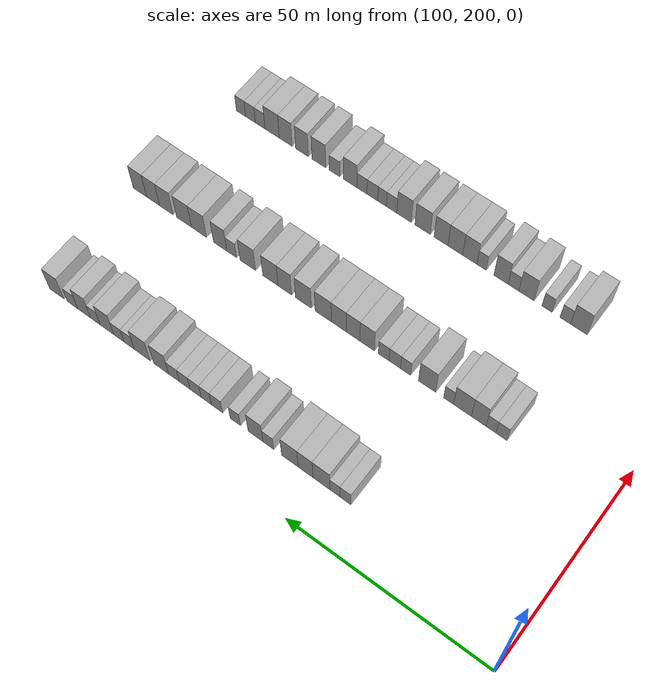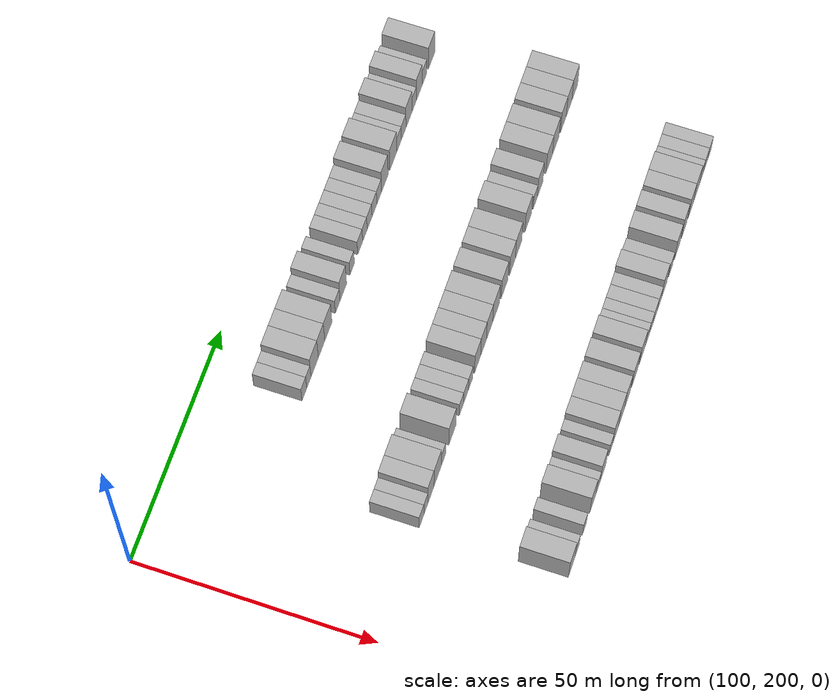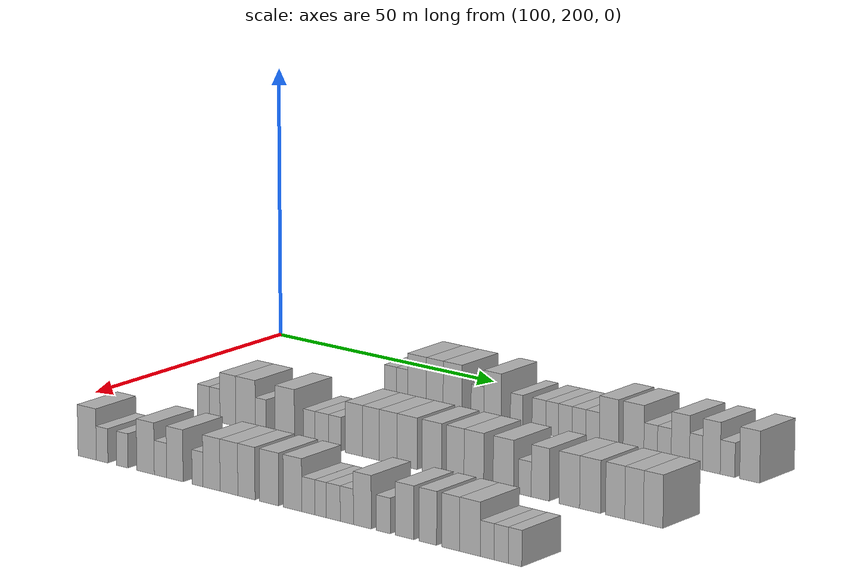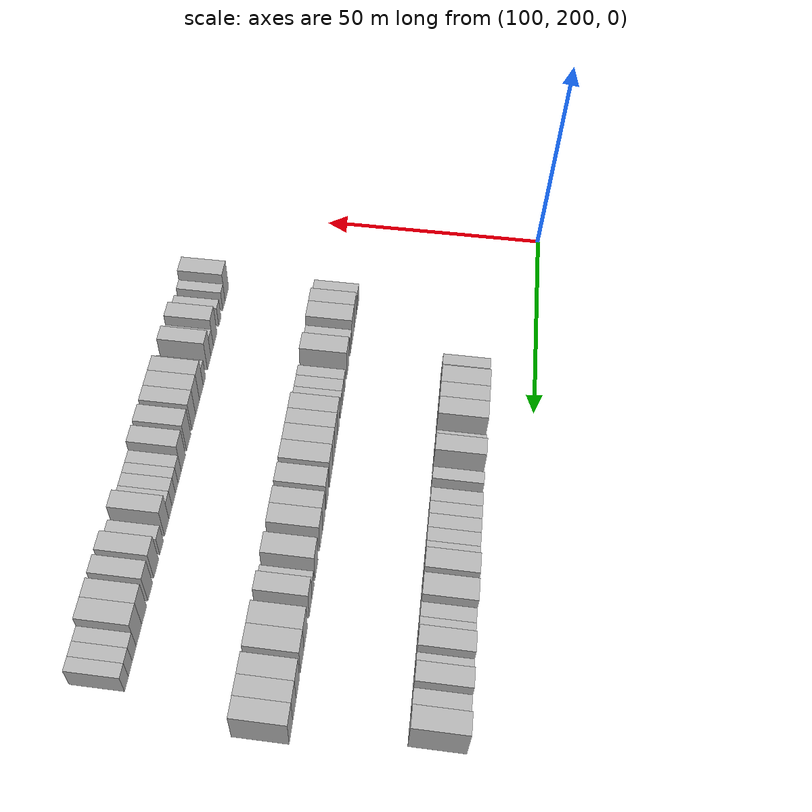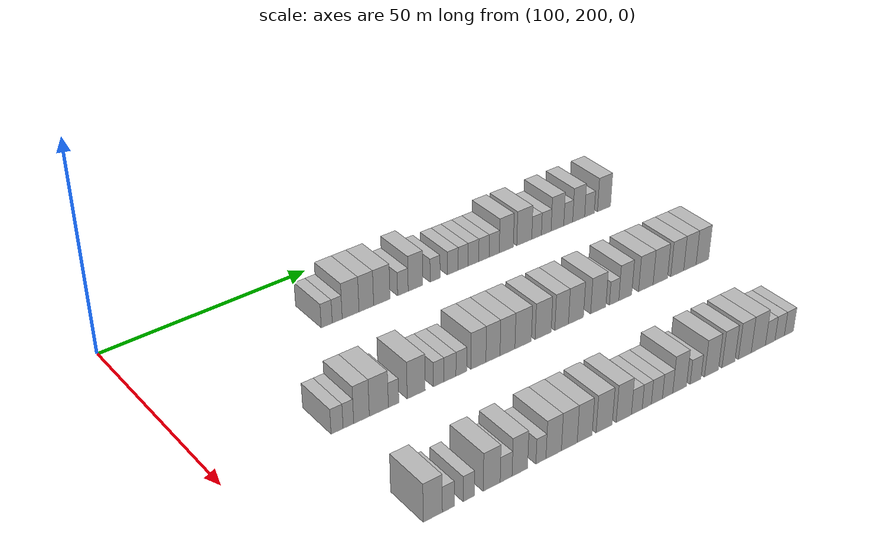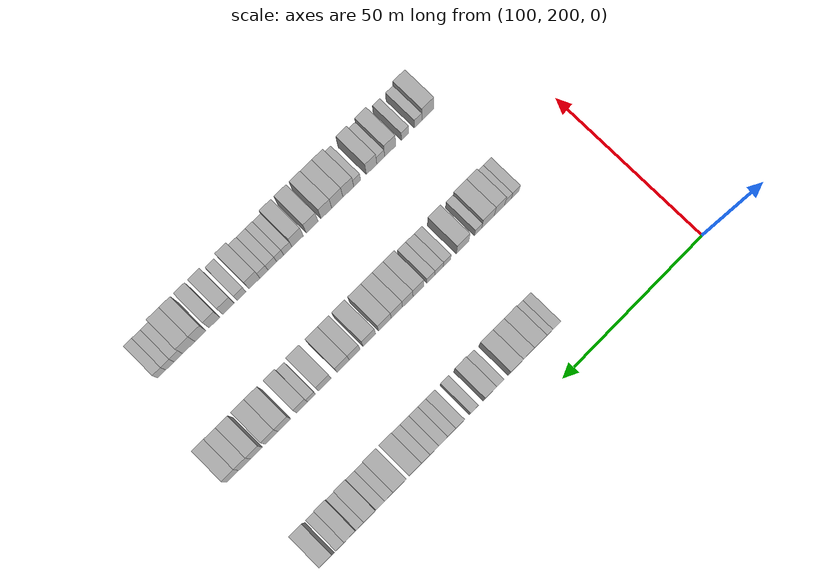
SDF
<sdf version="1.6">
 <world name="default">
  <model name="building_836">
   <static>1</static>
   <pose>115.0000 242.6444 0 0.000000 0.000000 0.000000</pose>
   <link name="link">
    <pose>0 0 3.00 0 0 0</pose>
    <collision name="collision"><geometry><box><size>10.0000 2.7393 6.0000</size></box></geometry></collision>
    <visual name="visual">
     <cast_shadows>0</cast_shadows>
     <geometry><box><size>10.0000 2.7393 6.0000</size></box></geometry>
     <material>
      <script>
       <uri>model://HANNAS_wall/materials/scripts</uri>
       <uri>model://HANNAS_wall/materials/textures</uri>
       <name>vrc/HANNAS_wall</name>
      </script>
     </material>
    </visual>
   </link>
  </model>
  <model name="building_837">
   <static>1</static>
   <pose>115.0000 245.2624 0 0.000000 0.000000 0.000000</pose>
   <link name="link">
    <pose>0 0 3.00 0 0 0</pose>
    <collision name="collision"><geometry><box><size>10.0000 2.4967 6.0000</size></box></geometry></collision>
    <visual name="visual">
     <cast_shadows>0</cast_shadows>
     <geometry><box><size>10.0000 2.4967 6.0000</size></box></geometry>
     <material>
      <script>
       <uri>model://HANNAS_wall/materials/scripts</uri>
       <uri>model://HANNAS_wall/materials/textures</uri>
       <name>vrc/HANNAS_wall</name>
      </script>
     </material>
    </visual>
   </link>
  </model>
  <model name="building_838">
   <static>1</static>
   <pose>115.0000 248.6427 0 0.000000 0.000000 0.000000</pose>
   <link name="link">
    <pose>0 0 4.50 0 0 0</pose>
    <collision name="collision"><geometry><box><size>10.0000 4.2640 9.0000</size></box></geometry></collision>
    <visual name="visual">
     <cast_shadows>0</cast_shadows>
     <geometry><box><size>10.0000 4.2640 9.0000</size></box></geometry>
     <material>
      <script>
       <uri>model://HANNAS_wall/materials/scripts</uri>
       <uri>model://HANNAS_wall/materials/textures</uri>
       <name>vrc/HANNAS_wall</name>
      </script>
     </material>
    </visual>
   </link>
  </model>
  <model name="building_839">
   <static>1</static>
   <pose>115.0000 252.6559 0 0.000000 0.000000 0.000000</pose>
   <link name="link">
    <pose>0 0 4.50 0 0 0</pose>
    <collision name="collision"><geometry><box><size>10.0000 3.7622 9.0000</size></box></geometry></collision>
    <visual name="visual">
     <cast_shadows>0</cast_shadows>
     <geometry><box><size>10.0000 3.7622 9.0000</size></box></geometry>
     <material>
      <script>
       <uri>model://HANNAS_wall/materials/scripts</uri>
       <uri>model://HANNAS_wall/materials/textures</uri>
       <name>vrc/HANNAS_wall</name>
      </script>
     </material>
    </visual>
   </link>
  </model>
  <model name="building_840">
   <static>1</static>
   <pose>115.0000 256.6590 0 0.000000 0.000000 0.000000</pose>
   <link name="link">
    <pose>0 0 4.50 0 0 0</pose>
    <collision name="collision"><geometry><box><size>10.0000 4.2440 9.0000</size></box></geometry></collision>
    <visual name="visual">
     <cast_shadows>0</cast_shadows>
     <geometry><box><size>10.0000 4.2440 9.0000</size></box></geometry>
     <material>
      <script>
       <uri>model://HANNAS_wall/materials/scripts</uri>
       <uri>model://HANNAS_wall/materials/textures</uri>
       <name>vrc/HANNAS_wall</name>
      </script>
     </material>
    </visual>
   </link>
  </model>
  <model name="building_841">
   <static>1</static>
   <pose>115.0000 262.1837 0 0.000000 0.000000 0.000000</pose>
   <link name="link">
    <pose>0 0 3.00 0 0 0</pose>
    <collision name="collision"><geometry><box><size>10.0000 2.8053 6.0000</size></box></geometry></collision>
    <visual name="visual">
     <cast_shadows>0</cast_shadows>
     <geometry><box><size>10.0000 2.8053 6.0000</size></box></geometry>
     <material>
      <script>
       <uri>model://HANNAS_wall/materials/scripts</uri>
       <uri>model://HANNAS_wall/materials/textures</uri>
       <name>vrc/HANNAS_wall</name>
      </script>
     </material>
    </visual>
   </link>
  </model>
  <model name="building_842">
   <static>1</static>
   <pose>115.0000 265.5219 0 0.000000 0.000000 0.000000</pose>
   <link name="link">
    <pose>0 0 4.50 0 0 0</pose>
    <collision name="collision"><geometry><box><size>10.0000 3.8711 9.0000</size></box></geometry></collision>
    <visual name="visual">
     <cast_shadows>0</cast_shadows>
     <geometry><box><size>10.0000 3.8711 9.0000</size></box></geometry>
     <material>
      <script>
       <uri>model://HANNAS_wall/materials/scripts</uri>
       <uri>model://HANNAS_wall/materials/textures</uri>
       <name>vrc/HANNAS_wall</name>
      </script>
     </material>
    </visual>
   </link>
  </model>
  <model name="building_843">
   <static>1</static>
   <pose>115.0000 270.8068 0 0.000000 0.000000 0.000000</pose>
   <link name="link">
    <pose>0 0 3.00 0 0 0</pose>
    <collision name="collision"><geometry><box><size>10.0000 2.6988 6.0000</size></box></geometry></collision>
    <visual name="visual">
     <cast_shadows>0</cast_shadows>
     <geometry><box><size>10.0000 2.6988 6.0000</size></box></geometry>
     <material>
      <script>
       <uri>model://HANNAS_wall/materials/scripts</uri>
       <uri>model://HANNAS_wall/materials/textures</uri>
       <name>vrc/HANNAS_wall</name>
      </script>
     </material>
    </visual>
   </link>
  </model>
  <model name="building_844">
   <static>1</static>
   <pose>115.0000 275.6511 0 0.000000 0.000000 0.000000</pose>
   <link name="link">
    <pose>0 0 3.00 0 0 0</pose>
    <collision name="collision"><geometry><box><size>10.0000 2.9899 6.0000</size></box></geometry></collision>
    <visual name="visual">
     <cast_shadows>0</cast_shadows>
     <geometry><box><size>10.0000 2.9899 6.0000</size></box></geometry>
     <material>
      <script>
       <uri>model://HANNAS_wall/materials/scripts</uri>
       <uri>model://HANNAS_wall/materials/textures</uri>
       <name>vrc/HANNAS_wall</name>
      </script>
     </material>
    </visual>
   </link>
  </model>
  <model name="building_845">
   <static>1</static>
   <pose>115.0000 278.5105 0 0.000000 0.000000 0.000000</pose>
   <link name="link">
    <pose>0 0 3.00 0 0 0</pose>
    <collision name="collision"><geometry><box><size>10.0000 2.7288 6.0000</size></box></geometry></collision>
    <visual name="visual">
     <cast_shadows>0</cast_shadows>
     <geometry><box><size>10.0000 2.7288 6.0000</size></box></geometry>
     <material>
      <script>
       <uri>model://HANNAS_wall/materials/scripts</uri>
       <uri>model://HANNAS_wall/materials/textures</uri>
       <name>vrc/HANNAS_wall</name>
      </script>
     </material>
    </visual>
   </link>
  </model>
  <model name="building_846">
   <static>1</static>
   <pose>115.0000 281.3687 0 0.000000 0.000000 0.000000</pose>
   <link name="link">
    <pose>0 0 3.00 0 0 0</pose>
    <collision name="collision"><geometry><box><size>10.0000 2.9876 6.0000</size></box></geometry></collision>
    <visual name="visual">
     <cast_shadows>0</cast_shadows>
     <geometry><box><size>10.0000 2.9876 6.0000</size></box></geometry>
     <material>
      <script>
       <uri>model://HANNAS_wall/materials/scripts</uri>
       <uri>model://HANNAS_wall/materials/textures</uri>
       <name>vrc/HANNAS_wall</name>
      </script>
     </material>
    </visual>
   </link>
  </model>
  <model name="building_847">
   <static>1</static>
   <pose>115.0000 284.3178 0 0.000000 0.000000 0.000000</pose>
   <link name="link">
    <pose>0 0 3.00 0 0 0</pose>
    <collision name="collision"><geometry><box><size>10.0000 2.9107 6.0000</size></box></geometry></collision>
    <visual name="visual">
     <cast_shadows>0</cast_shadows>
     <geometry><box><size>10.0000 2.9107 6.0000</size></box></geometry>
     <material>
      <script>
       <uri>model://HANNAS_wall/materials/scripts</uri>
       <uri>model://HANNAS_wall/materials/textures</uri>
       <name>vrc/HANNAS_wall</name>
      </script>
     </material>
    </visual>
   </link>
  </model>
  <model name="building_848">
   <static>1</static>
   <pose>115.0000 287.2300 0 0.000000 0.000000 0.000000</pose>
   <link name="link">
    <pose>0 0 3.00 0 0 0</pose>
    <collision name="collision"><geometry><box><size>10.0000 2.9139 6.0000</size></box></geometry></collision>
    <visual name="visual">
     <cast_shadows>0</cast_shadows>
     <geometry><box><size>10.0000 2.9139 6.0000</size></box></geometry>
     <material>
      <script>
       <uri>model://HANNAS_wall/materials/scripts</uri>
       <uri>model://HANNAS_wall/materials/textures</uri>
       <name>vrc/HANNAS_wall</name>
      </script>
     </material>
    </visual>
   </link>
  </model>
  <model name="building_849">
   <static>1</static>
   <pose>115.0000 290.7117 0 0.000000 0.000000 0.000000</pose>
   <link name="link">
    <pose>0 0 4.50 0 0 0</pose>
    <collision name="collision"><geometry><box><size>10.0000 4.0494 9.0000</size></box></geometry></collision>
    <visual name="visual">
     <cast_shadows>0</cast_shadows>
     <geometry><box><size>10.0000 4.0494 9.0000</size></box></geometry>
     <material>
      <script>
       <uri>model://HANNAS_wall/materials/scripts</uri>
       <uri>model://HANNAS_wall/materials/textures</uri>
       <name>vrc/HANNAS_wall</name>
      </script>
     </material>
    </visual>
   </link>
  </model>
  <model name="building_850">
   <static>1</static>
   <pose>115.0000 295.9304 0 0.000000 0.000000 0.000000</pose>
   <link name="link">
    <pose>0 0 4.50 0 0 0</pose>
    <collision name="collision"><geometry><box><size>10.0000 4.3881 9.0000</size></box></geometry></collision>
    <visual name="visual">
     <cast_shadows>0</cast_shadows>
     <geometry><box><size>10.0000 4.3881 9.0000</size></box></geometry>
     <material>
      <script>
       <uri>model://HANNAS_wall/materials/scripts</uri>
       <uri>model://HANNAS_wall/materials/textures</uri>
       <name>vrc/HANNAS_wall</name>
      </script>
     </material>
    </visual>
   </link>
  </model>
  <model name="building_851">
   <static>1</static>
   <pose>115.0000 299.5458 0 0.000000 0.000000 0.000000</pose>
   <link name="link">
    <pose>0 0 3.00 0 0 0</pose>
    <collision name="collision"><geometry><box><size>10.0000 2.8427 6.0000</size></box></geometry></collision>
    <visual name="visual">
     <cast_shadows>0</cast_shadows>
     <geometry><box><size>10.0000 2.8427 6.0000</size></box></geometry>
     <material>
      <script>
       <uri>model://HANNAS_wall/materials/scripts</uri>
       <uri>model://HANNAS_wall/materials/textures</uri>
       <name>vrc/HANNAS_wall</name>
      </script>
     </material>
    </visual>
   </link>
  </model>
  <model name="building_852">
   <static>1</static>
   <pose>115.0000 302.4018 0 0.000000 0.000000 0.000000</pose>
   <link name="link">
    <pose>0 0 3.00 0 0 0</pose>
    <collision name="collision"><geometry><box><size>10.0000 2.8693 6.0000</size></box></geometry></collision>
    <visual name="visual">
     <cast_shadows>0</cast_shadows>
     <geometry><box><size>10.0000 2.8693 6.0000</size></box></geometry>
     <material>
      <script>
       <uri>model://HANNAS_wall/materials/scripts</uri>
       <uri>model://HANNAS_wall/materials/textures</uri>
       <name>vrc/HANNAS_wall</name>
      </script>
     </material>
    </visual>
   </link>
  </model>
  <model name="building_853">
   <static>1</static>
   <pose>115.0000 305.7475 0 0.000000 0.000000 0.000000</pose>
   <link name="link">
    <pose>0 0 4.50 0 0 0</pose>
    <collision name="collision"><geometry><box><size>10.0000 3.8219 9.0000</size></box></geometry></collision>
    <visual name="visual">
     <cast_shadows>0</cast_shadows>
     <geometry><box><size>10.0000 3.8219 9.0000</size></box></geometry>
     <material>
      <script>
       <uri>model://HANNAS_wall/materials/scripts</uri>
       <uri>model://HANNAS_wall/materials/textures</uri>
       <name>vrc/HANNAS_wall</name>
      </script>
     </material>
    </visual>
   </link>
  </model>
  <model name="building_854">
   <static>1</static>
   <pose>115.0000 309.0097 0 0.000000 0.000000 0.000000</pose>
   <link name="link">
    <pose>0 0 3.00 0 0 0</pose>
    <collision name="collision"><geometry><box><size>10.0000 2.7025 6.0000</size></box></geometry></collision>
    <visual name="visual">
     <cast_shadows>0</cast_shadows>
     <geometry><box><size>10.0000 2.7025 6.0000</size></box></geometry>
     <material>
      <script>
       <uri>model://HANNAS_wall/materials/scripts</uri>
       <uri>model://HANNAS_wall/materials/textures</uri>
       <name>vrc/HANNAS_wall</name>
      </script>
     </material>
    </visual>
   </link>
  </model>
  <model name="building_855">
   <static>1</static>
   <pose>115.0000 312.1903 0 0.000000 0.000000 0.000000</pose>
   <link name="link">
    <pose>0 0 4.50 0 0 0</pose>
    <collision name="collision"><geometry><box><size>10.0000 3.6588 9.0000</size></box></geometry></collision>
    <visual name="visual">
     <cast_shadows>0</cast_shadows>
     <geometry><box><size>10.0000 3.6588 9.0000</size></box></geometry>
     <material>
      <script>
       <uri>model://HANNAS_wall/materials/scripts</uri>
       <uri>model://HANNAS_wall/materials/textures</uri>
       <name>vrc/HANNAS_wall</name>
      </script>
     </material>
    </visual>
   </link>
  </model>
  <model name="building_856">
   <static>1</static>
   <pose>115.0000 315.5106 0 0.000000 0.000000 0.000000</pose>
   <link name="link">
    <pose>0 0 3.00 0 0 0</pose>
    <collision name="collision"><geometry><box><size>10.0000 2.9817 6.0000</size></box></geometry></collision>
    <visual name="visual">
     <cast_shadows>0</cast_shadows>
     <geometry><box><size>10.0000 2.9817 6.0000</size></box></geometry>
     <material>
      <script>
       <uri>model://HANNAS_wall/materials/scripts</uri>
       <uri>model://HANNAS_wall/materials/textures</uri>
       <name>vrc/HANNAS_wall</name>
      </script>
     </material>
    </visual>
   </link>
  </model>
  <model name="building_857">
   <static>1</static>
   <pose>115.0000 320.0412 0 0.000000 0.000000 0.000000</pose>
   <link name="link">
    <pose>0 0 4.50 0 0 0</pose>
    <collision name="collision"><geometry><box><size>10.0000 4.0795 9.0000</size></box></geometry></collision>
    <visual name="visual">
     <cast_shadows>0</cast_shadows>
     <geometry><box><size>10.0000 4.0795 9.0000</size></box></geometry>
     <material>
      <script>
       <uri>model://HANNAS_wall/materials/scripts</uri>
       <uri>model://HANNAS_wall/materials/textures</uri>
       <name>vrc/HANNAS_wall</name>
      </script>
     </material>
    </visual>
   </link>
  </model>
  <model name="building_1060">
   <static>1</static>
   <pose>145.0000 225.3611 0 0.000000 0.000000 0.000000</pose>
   <link name="link">
    <pose>0 0 3.00 0 0 0</pose>
    <collision name="collision"><geometry><box><size>10.0000 2.7383 6.0000</size></box></geometry></collision>
    <visual name="visual">
     <cast_shadows>0</cast_shadows>
     <geometry><box><size>10.0000 2.7383 6.0000</size></box></geometry>
     <material>
      <script>
       <uri>model://HANNAS_wall/materials/scripts</uri>
       <uri>model://HANNAS_wall/materials/textures</uri>
       <name>vrc/HANNAS_wall</name>
      </script>
     </material>
    </visual>
   </link>
  </model>
  <model name="building_1061">
   <static>1</static>
   <pose>145.0000 227.9507 0 0.000000 0.000000 0.000000</pose>
   <link name="link">
    <pose>0 0 3.00 0 0 0</pose>
    <collision name="collision"><geometry><box><size>10.0000 2.4411 6.0000</size></box></geometry></collision>
    <visual name="visual">
     <cast_shadows>0</cast_shadows>
     <geometry><box><size>10.0000 2.4411 6.0000</size></box></geometry>
     <material>
      <script>
       <uri>model://HANNAS_wall/materials/scripts</uri>
       <uri>model://HANNAS_wall/materials/textures</uri>
       <name>vrc/HANNAS_wall</name>
      </script>
     </material>
    </visual>
   </link>
  </model>
  <model name="building_1062">
   <static>1</static>
   <pose>145.0000 230.9846 0 0.000000 0.000000 0.000000</pose>
   <link name="link">
    <pose>0 0 4.50 0 0 0</pose>
    <collision name="collision"><geometry><box><size>10.0000 3.6266 9.0000</size></box></geometry></collision>
    <visual name="visual">
     <cast_shadows>0</cast_shadows>
     <geometry><box><size>10.0000 3.6266 9.0000</size></box></geometry>
     <material>
      <script>
       <uri>model://HANNAS_wall/materials/scripts</uri>
       <uri>model://HANNAS_wall/materials/textures</uri>
       <name>vrc/HANNAS_wall</name>
      </script>
     </material>
    </visual>
   </link>
  </model>
  <model name="building_1063">
   <static>1</static>
   <pose>145.0000 235.0371 0 0.000000 0.000000 0.000000</pose>
   <link name="link">
    <pose>0 0 4.50 0 0 0</pose>
    <collision name="collision"><geometry><box><size>10.0000 4.4784 9.0000</size></box></geometry></collision>
    <visual name="visual">
     <cast_shadows>0</cast_shadows>
     <geometry><box><size>10.0000 4.4784 9.0000</size></box></geometry>
     <material>
      <script>
       <uri>model://HANNAS_wall/materials/scripts</uri>
       <uri>model://HANNAS_wall/materials/textures</uri>
       <name>vrc/HANNAS_wall</name>
      </script>
     </material>
    </visual>
   </link>
  </model>
  <model name="building_1064">
   <static>1</static>
   <pose>145.0000 238.5223 0 0.000000 0.000000 0.000000</pose>
   <link name="link">
    <pose>0 0 3.00 0 0 0</pose>
    <collision name="collision"><geometry><box><size>10.0000 2.4920 6.0000</size></box></geometry></collision>
    <visual name="visual">
     <cast_shadows>0</cast_shadows>
     <geometry><box><size>10.0000 2.4920 6.0000</size></box></geometry>
     <material>
      <script>
       <uri>model://HANNAS_wall/materials/scripts</uri>
       <uri>model://HANNAS_wall/materials/textures</uri>
       <name>vrc/HANNAS_wall</name>
      </script>
     </material>
    </visual>
   </link>
  </model>
  <model name="building_1065">
   <static>1</static>
   <pose>145.0000 243.9574 0 0.000000 0.000000 0.000000</pose>
   <link name="link">
    <pose>0 0 4.50 0 0 0</pose>
    <collision name="collision"><geometry><box><size>10.0000 4.3783 9.0000</size></box></geometry></collision>
    <visual name="visual">
     <cast_shadows>0</cast_shadows>
     <geometry><box><size>10.0000 4.3783 9.0000</size></box></geometry>
     <material>
      <script>
       <uri>model://HANNAS_wall/materials/scripts</uri>
       <uri>model://HANNAS_wall/materials/textures</uri>
       <name>vrc/HANNAS_wall</name>
      </script>
     </material>
    </visual>
   </link>
  </model>
  <model name="building_1066">
   <static>1</static>
   <pose>145.0000 249.4511 0 0.000000 0.000000 0.000000</pose>
   <link name="link">
    <pose>0 0 3.00 0 0 0</pose>
    <collision name="collision"><geometry><box><size>10.0000 2.6090 6.0000</size></box></geometry></collision>
    <visual name="visual">
     <cast_shadows>0</cast_shadows>
     <geometry><box><size>10.0000 2.6090 6.0000</size></box></geometry>
     <material>
      <script>
       <uri>model://HANNAS_wall/materials/scripts</uri>
       <uri>model://HANNAS_wall/materials/textures</uri>
       <name>vrc/HANNAS_wall</name>
      </script>
     </material>
    </visual>
   </link>
  </model>
  <model name="building_1067">
   <static>1</static>
   <pose>145.0000 252.2460 0 0.000000 0.000000 0.000000</pose>
   <link name="link">
    <pose>0 0 3.00 0 0 0</pose>
    <collision name="collision"><geometry><box><size>10.0000 2.9809 6.0000</size></box></geometry></collision>
    <visual name="visual">
     <cast_shadows>0</cast_shadows>
     <geometry><box><size>10.0000 2.9809 6.0000</size></box></geometry>
     <material>
      <script>
       <uri>model://HANNAS_wall/materials/scripts</uri>
       <uri>model://HANNAS_wall/materials/textures</uri>
       <name>vrc/HANNAS_wall</name>
      </script>
     </material>
    </visual>
   </link>
  </model>
  <model name="building_1068">
   <static>1</static>
   <pose>145.0000 255.1248 0 0.000000 0.000000 0.000000</pose>
   <link name="link">
    <pose>0 0 3.00 0 0 0</pose>
    <collision name="collision"><geometry><box><size>10.0000 2.7766 6.0000</size></box></geometry></collision>
    <visual name="visual">
     <cast_shadows>0</cast_shadows>
     <geometry><box><size>10.0000 2.7766 6.0000</size></box></geometry>
     <material>
      <script>
       <uri>model://HANNAS_wall/materials/scripts</uri>
       <uri>model://HANNAS_wall/materials/textures</uri>
       <name>vrc/HANNAS_wall</name>
      </script>
     </material>
    </visual>
   </link>
  </model>
  <model name="building_1069">
   <static>1</static>
   <pose>145.0000 259.4213 0 0.000000 0.000000 0.000000</pose>
   <link name="link">
    <pose>0 0 4.50 0 0 0</pose>
    <collision name="collision"><geometry><box><size>10.0000 3.8164 9.0000</size></box></geometry></collision>
    <visual name="visual">
     <cast_shadows>0</cast_shadows>
     <geometry><box><size>10.0000 3.8164 9.0000</size></box></geometry>
     <material>
      <script>
       <uri>model://HANNAS_wall/materials/scripts</uri>
       <uri>model://HANNAS_wall/materials/textures</uri>
       <name>vrc/HANNAS_wall</name>
      </script>
     </material>
    </visual>
   </link>
  </model>
  <model name="building_1070">
   <static>1</static>
   <pose>145.0000 263.1476 0 0.000000 0.000000 0.000000</pose>
   <link name="link">
    <pose>0 0 4.50 0 0 0</pose>
    <collision name="collision"><geometry><box><size>10.0000 3.6364 9.0000</size></box></geometry></collision>
    <visual name="visual">
     <cast_shadows>0</cast_shadows>
     <geometry><box><size>10.0000 3.6364 9.0000</size></box></geometry>
     <material>
      <script>
       <uri>model://HANNAS_wall/materials/scripts</uri>
       <uri>model://HANNAS_wall/materials/textures</uri>
       <name>vrc/HANNAS_wall</name>
      </script>
     </material>
    </visual>
   </link>
  </model>
  <model name="building_1071">
   <static>1</static>
   <pose>145.0000 266.9159 0 0.000000 0.000000 0.000000</pose>
   <link name="link">
    <pose>0 0 4.50 0 0 0</pose>
    <collision name="collision"><geometry><box><size>10.0000 3.9002 9.0000</size></box></geometry></collision>
    <visual name="visual">
     <cast_shadows>0</cast_shadows>
     <geometry><box><size>10.0000 3.9002 9.0000</size></box></geometry>
     <material>
      <script>
       <uri>model://HANNAS_wall/materials/scripts</uri>
       <uri>model://HANNAS_wall/materials/textures</uri>
       <name>vrc/HANNAS_wall</name>
      </script>
     </material>
    </visual>
   </link>
  </model>
  <model name="building_1072">
   <static>1</static>
   <pose>145.0000 271.0444 0 0.000000 0.000000 0.000000</pose>
   <link name="link">
    <pose>0 0 4.50 0 0 0</pose>
    <collision name="collision"><geometry><box><size>10.0000 4.3566 9.0000</size></box></geometry></collision>
    <visual name="visual">
     <cast_shadows>0</cast_shadows>
     <geometry><box><size>10.0000 4.3566 9.0000</size></box></geometry>
     <material>
      <script>
       <uri>model://HANNAS_wall/materials/scripts</uri>
       <uri>model://HANNAS_wall/materials/textures</uri>
       <name>vrc/HANNAS_wall</name>
      </script>
     </material>
    </visual>
   </link>
  </model>
  <model name="building_1073">
   <static>1</static>
   <pose>145.0000 276.3829 0 0.000000 0.000000 0.000000</pose>
   <link name="link">
    <pose>0 0 4.50 0 0 0</pose>
    <collision name="collision"><geometry><box><size>10.0000 4.3204 9.0000</size></box></geometry></collision>
    <visual name="visual">
     <cast_shadows>0</cast_shadows>
     <geometry><box><size>10.0000 4.3204 9.0000</size></box></geometry>
     <material>
      <script>
       <uri>model://HANNAS_wall/materials/scripts</uri>
       <uri>model://HANNAS_wall/materials/textures</uri>
       <name>vrc/HANNAS_wall</name>
      </script>
     </material>
    </visual>
   </link>
  </model>
  <model name="building_1074">
   <static>1</static>
   <pose>145.0000 281.4050 0 0.000000 0.000000 0.000000</pose>
   <link name="link">
    <pose>0 0 4.50 0 0 0</pose>
    <collision name="collision"><geometry><box><size>10.0000 3.7238 9.0000</size></box></geometry></collision>
    <visual name="visual">
     <cast_shadows>0</cast_shadows>
     <geometry><box><size>10.0000 3.7238 9.0000</size></box></geometry>
     <material>
      <script>
       <uri>model://HANNAS_wall/materials/scripts</uri>
       <uri>model://HANNAS_wall/materials/textures</uri>
       <name>vrc/HANNAS_wall</name>
      </script>
     </material>
    </visual>
   </link>
  </model>
  <model name="building_1075">
   <static>1</static>
   <pose>145.0000 285.3558 0 0.000000 0.000000 0.000000</pose>
   <link name="link">
    <pose>0 0 4.50 0 0 0</pose>
    <collision name="collision"><geometry><box><size>10.0000 4.1779 9.0000</size></box></geometry></collision>
    <visual name="visual">
     <cast_shadows>0</cast_shadows>
     <geometry><box><size>10.0000 4.1779 9.0000</size></box></geometry>
     <material>
      <script>
       <uri>model://HANNAS_wall/materials/scripts</uri>
       <uri>model://HANNAS_wall/materials/textures</uri>
       <name>vrc/HANNAS_wall</name>
      </script>
     </material>
    </visual>
   </link>
  </model>
  <model name="building_1076">
   <static>1</static>
   <pose>145.0000 291.5945 0 0.000000 0.000000 0.000000</pose>
   <link name="link">
    <pose>0 0 4.50 0 0 0</pose>
    <collision name="collision"><geometry><box><size>10.0000 4.2995 9.0000</size></box></geometry></collision>
    <visual name="visual">
     <cast_shadows>0</cast_shadows>
     <geometry><box><size>10.0000 4.2995 9.0000</size></box></geometry>
     <material>
      <script>
       <uri>model://HANNAS_wall/materials/scripts</uri>
       <uri>model://HANNAS_wall/materials/textures</uri>
       <name>vrc/HANNAS_wall</name>
      </script>
     </material>
    </visual>
   </link>
  </model>
  <model name="building_1077">
   <static>1</static>
   <pose>145.0000 296.0900 0 0.000000 0.000000 0.000000</pose>
   <link name="link">
    <pose>0 0 3.00 0 0 0</pose>
    <collision name="collision"><geometry><box><size>10.0000 2.6913 6.0000</size></box></geometry></collision>
    <visual name="visual">
     <cast_shadows>0</cast_shadows>
     <geometry><box><size>10.0000 2.6913 6.0000</size></box></geometry>
     <material>
      <script>
       <uri>model://HANNAS_wall/materials/scripts</uri>
       <uri>model://HANNAS_wall/materials/textures</uri>
       <name>vrc/HANNAS_wall</name>
      </script>
     </material>
    </visual>
   </link>
  </model>
  <model name="building_1078">
   <static>1</static>
   <pose>145.0000 299.3099 0 0.000000 0.000000 0.000000</pose>
   <link name="link">
    <pose>0 0 4.50 0 0 0</pose>
    <collision name="collision"><geometry><box><size>10.0000 3.7486 9.0000</size></box></geometry></collision>
    <visual name="visual">
     <cast_shadows>0</cast_shadows>
     <geometry><box><size>10.0000 3.7486 9.0000</size></box></geometry>
     <material>
      <script>
       <uri>model://HANNAS_wall/materials/scripts</uri>
       <uri>model://HANNAS_wall/materials/textures</uri>
       <name>vrc/HANNAS_wall</name>
      </script>
     </material>
    </visual>
   </link>
  </model>
  <model name="building_1079">
   <static>1</static>
   <pose>145.0000 305.3172 0 0.000000 0.000000 0.000000</pose>
   <link name="link">
    <pose>0 0 4.50 0 0 0</pose>
    <collision name="collision"><geometry><box><size>10.0000 4.2659 9.0000</size></box></geometry></collision>
    <visual name="visual">
     <cast_shadows>0</cast_shadows>
     <geometry><box><size>10.0000 4.2659 9.0000</size></box></geometry>
     <material>
      <script>
       <uri>model://HANNAS_wall/materials/scripts</uri>
       <uri>model://HANNAS_wall/materials/textures</uri>
       <name>vrc/HANNAS_wall</name>
      </script>
     </material>
    </visual>
   </link>
  </model>
  <model name="building_1080">
   <static>1</static>
   <pose>145.0000 309.5965 0 0.000000 0.000000 0.000000</pose>
   <link name="link">
    <pose>0 0 4.50 0 0 0</pose>
    <collision name="collision"><geometry><box><size>10.0000 4.2928 9.0000</size></box></geometry></collision>
    <visual name="visual">
     <cast_shadows>0</cast_shadows>
     <geometry><box><size>10.0000 4.2928 9.0000</size></box></geometry>
     <material>
      <script>
       <uri>model://HANNAS_wall/materials/scripts</uri>
       <uri>model://HANNAS_wall/materials/textures</uri>
       <name>vrc/HANNAS_wall</name>
      </script>
     </material>
    </visual>
   </link>
  </model>
  <model name="building_1081">
   <static>1</static>
   <pose>145.0000 314.7008 0 0.000000 0.000000 0.000000</pose>
   <link name="link">
    <pose>0 0 4.50 0 0 0</pose>
    <collision name="collision"><geometry><box><size>10.0000 3.9159 9.0000</size></box></geometry></collision>
    <visual name="visual">
     <cast_shadows>0</cast_shadows>
     <geometry><box><size>10.0000 3.9159 9.0000</size></box></geometry>
     <material>
      <script>
       <uri>model://HANNAS_wall/materials/scripts</uri>
       <uri>model://HANNAS_wall/materials/textures</uri>
       <name>vrc/HANNAS_wall</name>
      </script>
     </material>
    </visual>
   </link>
  </model>
  <model name="building_1082">
   <static>1</static>
   <pose>145.0000 318.5478 0 0.000000 0.000000 0.000000</pose>
   <link name="link">
    <pose>0 0 4.50 0 0 0</pose>
    <collision name="collision"><geometry><box><size>10.0000 3.7782 9.0000</size></box></geometry></collision>
    <visual name="visual">
     <cast_shadows>0</cast_shadows>
     <geometry><box><size>10.0000 3.7782 9.0000</size></box></geometry>
     <material>
      <script>
       <uri>model://HANNAS_wall/materials/scripts</uri>
       <uri>model://HANNAS_wall/materials/textures</uri>
       <name>vrc/HANNAS_wall</name>
      </script>
     </material>
    </visual>
   </link>
  </model>
  <model name="building_1083">
   <static>1</static>
   <pose>145.0000 322.3862 0 0.000000 0.000000 0.000000</pose>
   <link name="link">
    <pose>0 0 4.50 0 0 0</pose>
    <collision name="collision"><geometry><box><size>10.0000 3.8986 9.0000</size></box></geometry></collision>
    <visual name="visual">
     <cast_shadows>0</cast_shadows>
     <geometry><box><size>10.0000 3.8986 9.0000</size></box></geometry>
     <material>
      <script>
       <uri>model://HANNAS_wall/materials/scripts</uri>
       <uri>model://HANNAS_wall/materials/textures</uri>
       <name>vrc/HANNAS_wall</name>
      </script>
     </material>
    </visual>
   </link>
  </model>
  <model name="building_1298">
   <static>1</static>
   <pose>175.0000 225.8229 0 0.000000 0.000000 0.000000</pose>
   <link name="link">
    <pose>0 0 4.50 0 0 0</pose>
    <collision name="collision"><geometry><box><size>10.0000 4.2179 9.0000</size></box></geometry></collision>
    <visual name="visual">
     <cast_shadows>0</cast_shadows>
     <geometry><box><size>10.0000 4.2179 9.0000</size></box></geometry>
     <material>
      <script>
       <uri>model://HANNAS_wall/materials/scripts</uri>
       <uri>model://HANNAS_wall/materials/textures</uri>
       <name>vrc/HANNAS_wall</name>
      </script>
     </material>
    </visual>
   </link>
  </model>
  <model name="building_1299">
   <static>1</static>
   <pose>175.0000 229.2512 0 0.000000 0.000000 0.000000</pose>
   <link name="link">
    <pose>0 0 3.00 0 0 0</pose>
    <collision name="collision"><geometry><box><size>10.0000 2.6387 6.0000</size></box></geometry></collision>
    <visual name="visual">
     <cast_shadows>0</cast_shadows>
     <geometry><box><size>10.0000 2.6387 6.0000</size></box></geometry>
     <material>
      <script>
       <uri>model://HANNAS_wall/materials/scripts</uri>
       <uri>model://HANNAS_wall/materials/textures</uri>
       <name>vrc/HANNAS_wall</name>
      </script>
     </material>
    </visual>
   </link>
  </model>
  <model name="building_1300">
   <static>1</static>
   <pose>175.0000 233.8619 0 0.000000 0.000000 0.000000</pose>
   <link name="link">
    <pose>0 0 3.00 0 0 0</pose>
    <collision name="collision"><geometry><box><size>10.0000 2.5826 6.0000</size></box></geometry></collision>
    <visual name="visual">
     <cast_shadows>0</cast_shadows>
     <geometry><box><size>10.0000 2.5826 6.0000</size></box></geometry>
     <material>
      <script>
       <uri>model://HANNAS_wall/materials/scripts</uri>
       <uri>model://HANNAS_wall/materials/textures</uri>
       <name>vrc/HANNAS_wall</name>
      </script>
     </material>
    </visual>
   </link>
  </model>
  <model name="building_1301">
   <static>1</static>
   <pose>175.0000 239.1198 0 0.000000 0.000000 0.000000</pose>
   <link name="link">
    <pose>0 0 4.50 0 0 0</pose>
    <collision name="collision"><geometry><box><size>10.0000 3.9332 9.0000</size></box></geometry></collision>
    <visual name="visual">
     <cast_shadows>0</cast_shadows>
     <geometry><box><size>10.0000 3.9332 9.0000</size></box></geometry>
     <material>
      <script>
       <uri>model://HANNAS_wall/materials/scripts</uri>
       <uri>model://HANNAS_wall/materials/textures</uri>
       <name>vrc/HANNAS_wall</name>
      </script>
     </material>
    </visual>
   </link>
  </model>
  <model name="building_1302">
   <static>1</static>
   <pose>175.0000 242.4787 0 0.000000 0.000000 0.000000</pose>
   <link name="link">
    <pose>0 0 3.00 0 0 0</pose>
    <collision name="collision"><geometry><box><size>10.0000 2.7845 6.0000</size></box></geometry></collision>
    <visual name="visual">
     <cast_shadows>0</cast_shadows>
     <geometry><box><size>10.0000 2.7845 6.0000</size></box></geometry>
     <material>
      <script>
       <uri>model://HANNAS_wall/materials/scripts</uri>
       <uri>model://HANNAS_wall/materials/textures</uri>
       <name>vrc/HANNAS_wall</name>
      </script>
     </material>
    </visual>
   </link>
  </model>
  <model name="building_1303">
   <static>1</static>
   <pose>175.0000 245.7047 0 0.000000 0.000000 0.000000</pose>
   <link name="link">
    <pose>0 0 4.50 0 0 0</pose>
    <collision name="collision"><geometry><box><size>10.0000 3.6676 9.0000</size></box></geometry></collision>
    <visual name="visual">
     <cast_shadows>0</cast_shadows>
     <geometry><box><size>10.0000 3.6676 9.0000</size></box></geometry>
     <material>
      <script>
       <uri>model://HANNAS_wall/materials/scripts</uri>
       <uri>model://HANNAS_wall/materials/textures</uri>
       <name>vrc/HANNAS_wall</name>
      </script>
     </material>
    </visual>
   </link>
  </model>
  <model name="building_1304">
   <static>1</static>
   <pose>175.0000 250.7516 0 0.000000 0.000000 0.000000</pose>
   <link name="link">
    <pose>0 0 3.00 0 0 0</pose>
    <collision name="collision"><geometry><box><size>10.0000 2.4262 6.0000</size></box></geometry></collision>
    <visual name="visual">
     <cast_shadows>0</cast_shadows>
     <geometry><box><size>10.0000 2.4262 6.0000</size></box></geometry>
     <material>
      <script>
       <uri>model://HANNAS_wall/materials/scripts</uri>
       <uri>model://HANNAS_wall/materials/textures</uri>
       <name>vrc/HANNAS_wall</name>
      </script>
     </material>
    </visual>
   </link>
  </model>
  <model name="building_1305">
   <static>1</static>
   <pose>175.0000 253.8485 0 0.000000 0.000000 0.000000</pose>
   <link name="link">
    <pose>0 0 4.50 0 0 0</pose>
    <collision name="collision"><geometry><box><size>10.0000 3.7674 9.0000</size></box></geometry></collision>
    <visual name="visual">
     <cast_shadows>0</cast_shadows>
     <geometry><box><size>10.0000 3.7674 9.0000</size></box></geometry>
     <material>
      <script>
       <uri>model://HANNAS_wall/materials/scripts</uri>
       <uri>model://HANNAS_wall/materials/textures</uri>
       <name>vrc/HANNAS_wall</name>
      </script>
     </material>
    </visual>
   </link>
  </model>
  <model name="building_1306">
   <static>1</static>
   <pose>175.0000 257.6849 0 0.000000 0.000000 0.000000</pose>
   <link name="link">
    <pose>0 0 4.50 0 0 0</pose>
    <collision name="collision"><geometry><box><size>10.0000 3.9055 9.0000</size></box></geometry></collision>
    <visual name="visual">
     <cast_shadows>0</cast_shadows>
     <geometry><box><size>10.0000 3.9055 9.0000</size></box></geometry>
     <material>
      <script>
       <uri>model://HANNAS_wall/materials/scripts</uri>
       <uri>model://HANNAS_wall/materials/textures</uri>
       <name>vrc/HANNAS_wall</name>
      </script>
     </material>
    </visual>
   </link>
  </model>
  <model name="building_1307">
   <static>1</static>
   <pose>175.0000 261.5066 0 0.000000 0.000000 0.000000</pose>
   <link name="link">
    <pose>0 0 4.50 0 0 0</pose>
    <collision name="collision"><geometry><box><size>10.0000 3.7378 9.0000</size></box></geometry></collision>
    <visual name="visual">
     <cast_shadows>0</cast_shadows>
     <geometry><box><size>10.0000 3.7378 9.0000</size></box></geometry>
     <material>
      <script>
       <uri>model://HANNAS_wall/materials/scripts</uri>
       <uri>model://HANNAS_wall/materials/textures</uri>
       <name>vrc/HANNAS_wall</name>
      </script>
     </material>
    </visual>
   </link>
  </model>
  <model name="building_1308">
   <static>1</static>
   <pose>175.0000 266.4384 0 0.000000 0.000000 0.000000</pose>
   <link name="link">
    <pose>0 0 4.50 0 0 0</pose>
    <collision name="collision"><geometry><box><size>10.0000 4.1257 9.0000</size></box></geometry></collision>
    <visual name="visual">
     <cast_shadows>0</cast_shadows>
     <geometry><box><size>10.0000 4.1257 9.0000</size></box></geometry>
     <material>
      <script>
       <uri>model://HANNAS_wall/materials/scripts</uri>
       <uri>model://HANNAS_wall/materials/textures</uri>
       <name>vrc/HANNAS_wall</name>
      </script>
     </material>
    </visual>
   </link>
  </model>
  <model name="building_1309">
   <static>1</static>
   <pose>175.0000 271.4792 0 0.000000 0.000000 0.000000</pose>
   <link name="link">
    <pose>0 0 4.50 0 0 0</pose>
    <collision name="collision"><geometry><box><size>10.0000 3.9560 9.0000</size></box></geometry></collision>
    <visual name="visual">
     <cast_shadows>0</cast_shadows>
     <geometry><box><size>10.0000 3.9560 9.0000</size></box></geometry>
     <material>
      <script>
       <uri>model://HANNAS_wall/materials/scripts</uri>
       <uri>model://HANNAS_wall/materials/textures</uri>
       <name>vrc/HANNAS_wall</name>
      </script>
     </material>
    </visual>
   </link>
  </model>
  <model name="building_1310">
   <static>1</static>
   <pose>175.0000 274.8730 0 0.000000 0.000000 0.000000</pose>
   <link name="link">
    <pose>0 0 3.00 0 0 0</pose>
    <collision name="collision"><geometry><box><size>10.0000 2.8316 6.0000</size></box></geometry></collision>
    <visual name="visual">
     <cast_shadows>0</cast_shadows>
     <geometry><box><size>10.0000 2.8316 6.0000</size></box></geometry>
     <material>
      <script>
       <uri>model://HANNAS_wall/materials/scripts</uri>
       <uri>model://HANNAS_wall/materials/textures</uri>
       <name>vrc/HANNAS_wall</name>
      </script>
     </material>
    </visual>
   </link>
  </model>
  <model name="building_1311">
   <static>1</static>
   <pose>175.0000 277.4900 0 0.000000 0.000000 0.000000</pose>
   <link name="link">
    <pose>0 0 3.00 0 0 0</pose>
    <collision name="collision"><geometry><box><size>10.0000 2.4023 6.0000</size></box></geometry></collision>
    <visual name="visual">
     <cast_shadows>0</cast_shadows>
     <geometry><box><size>10.0000 2.4023 6.0000</size></box></geometry>
     <material>
      <script>
       <uri>model://HANNAS_wall/materials/scripts</uri>
       <uri>model://HANNAS_wall/materials/textures</uri>
       <name>vrc/HANNAS_wall</name>
      </script>
     </material>
    </visual>
   </link>
  </model>
  <model name="building_1312">
   <static>1</static>
   <pose>175.0000 280.1762 0 0.000000 0.000000 0.000000</pose>
   <link name="link">
    <pose>0 0 3.00 0 0 0</pose>
    <collision name="collision"><geometry><box><size>10.0000 2.9702 6.0000</size></box></geometry></collision>
    <visual name="visual">
     <cast_shadows>0</cast_shadows>
     <geometry><box><size>10.0000 2.9702 6.0000</size></box></geometry>
     <material>
      <script>
       <uri>model://HANNAS_wall/materials/scripts</uri>
       <uri>model://HANNAS_wall/materials/textures</uri>
       <name>vrc/HANNAS_wall</name>
      </script>
     </material>
    </visual>
   </link>
  </model>
  <model name="building_1313">
   <static>1</static>
   <pose>175.0000 283.0475 0 0.000000 0.000000 0.000000</pose>
   <link name="link">
    <pose>0 0 3.00 0 0 0</pose>
    <collision name="collision"><geometry><box><size>10.0000 2.7725 6.0000</size></box></geometry></collision>
    <visual name="visual">
     <cast_shadows>0</cast_shadows>
     <geometry><box><size>10.0000 2.7725 6.0000</size></box></geometry>
     <material>
      <script>
       <uri>model://HANNAS_wall/materials/scripts</uri>
       <uri>model://HANNAS_wall/materials/textures</uri>
       <name>vrc/HANNAS_wall</name>
      </script>
     </material>
    </visual>
   </link>
  </model>
  <model name="building_1314">
   <static>1</static>
   <pose>175.0000 286.3107 0 0.000000 0.000000 0.000000</pose>
   <link name="link">
    <pose>0 0 4.50 0 0 0</pose>
    <collision name="collision"><geometry><box><size>10.0000 3.7539 9.0000</size></box></geometry></collision>
    <visual name="visual">
     <cast_shadows>0</cast_shadows>
     <geometry><box><size>10.0000 3.7539 9.0000</size></box></geometry>
     <material>
      <script>
       <uri>model://HANNAS_wall/materials/scripts</uri>
       <uri>model://HANNAS_wall/materials/textures</uri>
       <name>vrc/HANNAS_wall</name>
      </script>
     </material>
    </visual>
   </link>
  </model>
  <model name="building_1315">
   <static>1</static>
   <pose>175.0000 290.6802 0 0.000000 0.000000 0.000000</pose>
   <link name="link">
    <pose>0 0 3.00 0 0 0</pose>
    <collision name="collision"><geometry><box><size>10.0000 2.9850 6.0000</size></box></geometry></collision>
    <visual name="visual">
     <cast_shadows>0</cast_shadows>
     <geometry><box><size>10.0000 2.9850 6.0000</size></box></geometry>
     <material>
      <script>
       <uri>model://HANNAS_wall/materials/scripts</uri>
       <uri>model://HANNAS_wall/materials/textures</uri>
       <name>vrc/HANNAS_wall</name>
      </script>
     </material>
    </visual>
   </link>
  </model>
  <model name="building_1316">
   <static>1</static>
   <pose>175.0000 295.1298 0 0.000000 0.000000 0.000000</pose>
   <link name="link">
    <pose>0 0 4.50 0 0 0</pose>
    <collision name="collision"><geometry><box><size>10.0000 3.9143 9.0000</size></box></geometry></collision>
    <visual name="visual">
     <cast_shadows>0</cast_shadows>
     <geometry><box><size>10.0000 3.9143 9.0000</size></box></geometry>
     <material>
      <script>
       <uri>model://HANNAS_wall/materials/scripts</uri>
       <uri>model://HANNAS_wall/materials/textures</uri>
       <name>vrc/HANNAS_wall</name>
      </script>
     </material>
    </visual>
   </link>
  </model>
  <model name="building_1317">
   <static>1</static>
   <pose>175.0000 299.9187 0 0.000000 0.000000 0.000000</pose>
   <link name="link">
    <pose>0 0 4.50 0 0 0</pose>
    <collision name="collision"><geometry><box><size>10.0000 3.6635 9.0000</size></box></geometry></collision>
    <visual name="visual">
     <cast_shadows>0</cast_shadows>
     <geometry><box><size>10.0000 3.6635 9.0000</size></box></geometry>
     <material>
      <script>
       <uri>model://HANNAS_wall/materials/scripts</uri>
       <uri>model://HANNAS_wall/materials/textures</uri>
       <name>vrc/HANNAS_wall</name>
      </script>
     </material>
    </visual>
   </link>
  </model>
  <model name="building_1318">
   <static>1</static>
   <pose>175.0000 304.6058 0 0.000000 0.000000 0.000000</pose>
   <link name="link">
    <pose>0 0 4.50 0 0 0</pose>
    <collision name="collision"><geometry><box><size>10.0000 3.7107 9.0000</size></box></geometry></collision>
    <visual name="visual">
     <cast_shadows>0</cast_shadows>
     <geometry><box><size>10.0000 3.7107 9.0000</size></box></geometry>
     <material>
      <script>
       <uri>model://HANNAS_wall/materials/scripts</uri>
       <uri>model://HANNAS_wall/materials/textures</uri>
       <name>vrc/HANNAS_wall</name>
      </script>
     </material>
    </visual>
   </link>
  </model>
  <model name="building_1319">
   <static>1</static>
   <pose>175.0000 308.5409 0 0.000000 0.000000 0.000000</pose>
   <link name="link">
    <pose>0 0 4.50 0 0 0</pose>
    <collision name="collision"><geometry><box><size>10.0000 4.1594 9.0000</size></box></geometry></collision>
    <visual name="visual">
     <cast_shadows>0</cast_shadows>
     <geometry><box><size>10.0000 4.1594 9.0000</size></box></geometry>
     <material>
      <script>
       <uri>model://HANNAS_wall/materials/scripts</uri>
       <uri>model://HANNAS_wall/materials/textures</uri>
       <name>vrc/HANNAS_wall</name>
      </script>
     </material>
    </visual>
   </link>
  </model>
  <model name="building_1320">
   <static>1</static>
   <pose>175.0000 312.0407 0 0.000000 0.000000 0.000000</pose>
   <link name="link">
    <pose>0 0 3.00 0 0 0</pose>
    <collision name="collision"><geometry><box><size>10.0000 2.8404 6.0000</size></box></geometry></collision>
    <visual name="visual">
     <cast_shadows>0</cast_shadows>
     <geometry><box><size>10.0000 2.8404 6.0000</size></box></geometry>
     <material>
      <script>
       <uri>model://HANNAS_wall/materials/scripts</uri>
       <uri>model://HANNAS_wall/materials/textures</uri>
       <name>vrc/HANNAS_wall</name>
      </script>
     </material>
    </visual>
   </link>
  </model>
  <model name="building_1321">
   <static>1</static>
   <pose>175.0000 314.8627 0 0.000000 0.000000 0.000000</pose>
   <link name="link">
    <pose>0 0 3.00 0 0 0</pose>
    <collision name="collision"><geometry><box><size>10.0000 2.8037 6.0000</size></box></geometry></collision>
    <visual name="visual">
     <cast_shadows>0</cast_shadows>
     <geometry><box><size>10.0000 2.8037 6.0000</size></box></geometry>
     <material>
      <script>
       <uri>model://HANNAS_wall/materials/scripts</uri>
       <uri>model://HANNAS_wall/materials/textures</uri>
       <name>vrc/HANNAS_wall</name>
      </script>
     </material>
    </visual>
   </link>
  </model>
  <model name="building_1322">
   <static>1</static>
   <pose>175.0000 317.6261 0 0.000000 0.000000 0.000000</pose>
   <link name="link">
    <pose>0 0 3.00 0 0 0</pose>
    <collision name="collision"><geometry><box><size>10.0000 2.7229 6.0000</size></box></geometry></collision>
    <visual name="visual">
     <cast_shadows>0</cast_shadows>
     <geometry><box><size>10.0000 2.7229 6.0000</size></box></geometry>
     <material>
      <script>
       <uri>model://HANNAS_wall/materials/scripts</uri>
       <uri>model://HANNAS_wall/materials/textures</uri>
       <name>vrc/HANNAS_wall</name>
      </script>
     </material>
    </visual>
   </link>
  </model>
 </world>
</sdf>
